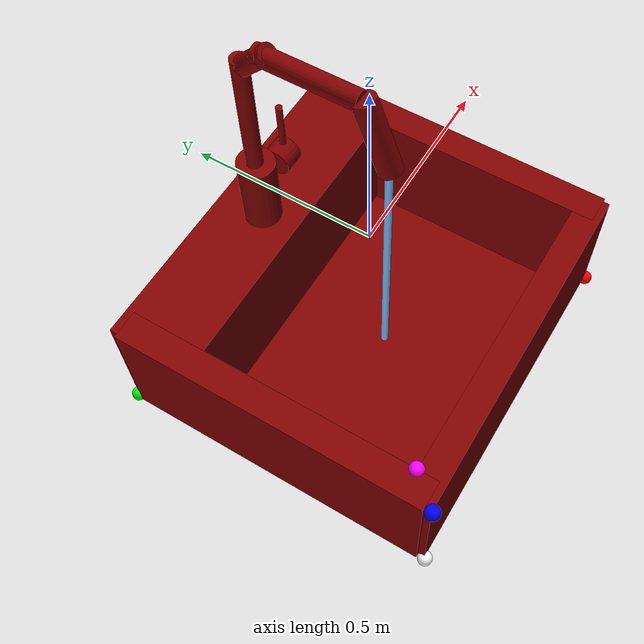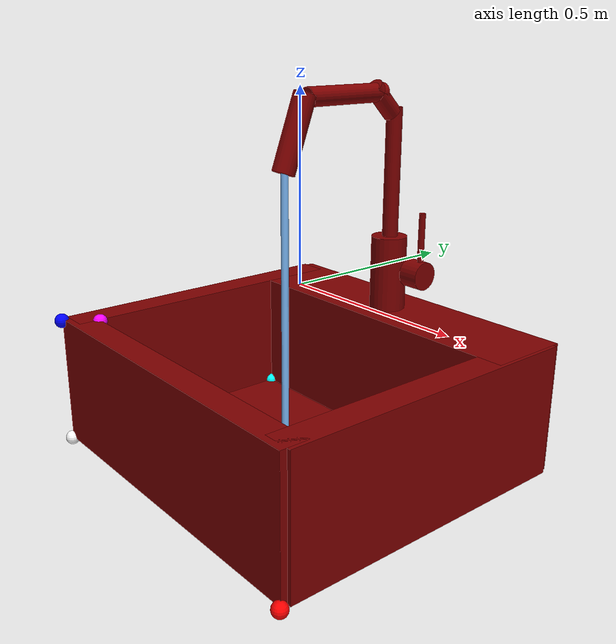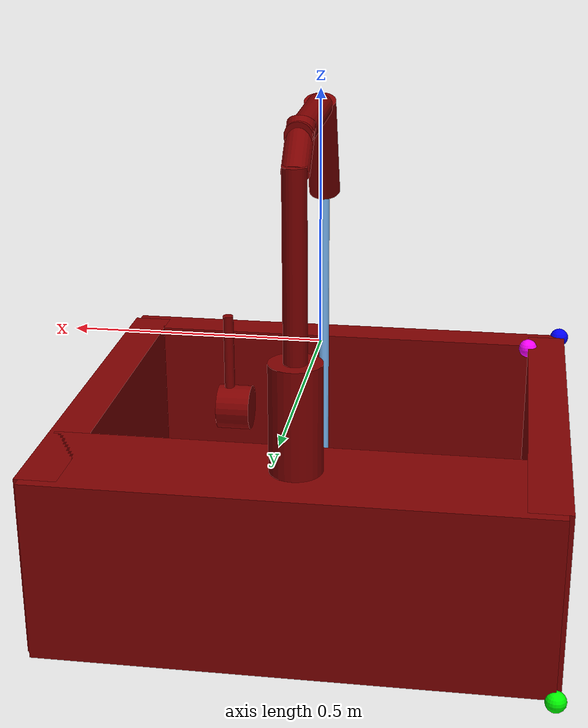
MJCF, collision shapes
<mujoco model="model">
  <compiler angle="radian" />
  <asset>
    <texture type="2d" name="image0" file="visuals/image0.png" />
    <material name="kitchen_sink" texture="image0" specular="0.5" shininess="0.25" />
    <mesh file="visuals/model_1.obj" name="model_1_vis" scale="1 1 1" />
    <mesh file="visuals/spout_0.obj" name="spout_0_vis" scale="1 1 1" />
    <mesh file="visuals/handle_0.obj" name="handle_0_vis" scale="1 1 1" />
  </asset>
  <default>
    <default class="visual">
      <geom conaffinity="0" contype="0" group="1" type="mesh" />
    </default>
    <default class="collision">
      <geom group="0" rgba="0.5 0 0 0.5" />
    </default>
  </default>
  <worldbody>
    <body>
      <body name="object">
        <geom solimp="0.998 0.998 0.001" solref="0.001 1" density="100" friction="0.95 0.3 0.1"
          type="mesh" mesh="model_1_vis" material="kitchen_sink" class="visual" />
        <!-- Bottom -->
        <geom class="collision" type="box" pos="0 -0.08 -0.4825" size="0.485 0.35 0.0125"
          name="bottom" />
        <!-- Left -->
        <geom class="collision" type="box" pos="-0.455 0 -0.31" size="0.04 0.43 0.18" />
        <!-- Right -->
        <geom class="collision" type="box" pos="0.455 0 -0.31" size="0.04 0.43 0.18" />
        <!-- Back -->
        <geom class="collision" type="box" pos="0 0.335 -0.31" size="0.485 0.115 0.18" />
        <!-- Front -->
        <geom class="collision" type="box" pos="0 -0.41 -0.31" size="0.485 0.038 0.18" />
        <!-- Base -->
        <geom class="collision" type="cylinder" pos="0 0.323 -0.026" size="0.05 0.105 0" />
        <!-- Knob Connection -->
        <body name="spout">
          <joint axis="0 0 1" limited="true" name="spout_joint" damping="10" range="-1.57 1.57"
            pos="0 0.325 0.25" />
          <geom solimp="0.998 0.998 0.001" solref="0.001 1" density="100" friction="0.95 0.3 0.1"
            type="mesh" mesh="spout_0_vis" material="kitchen_sink" class="visual" />
          <!-- Faucet Main -->
          <geom class="collision" type="cylinder" pos="0 0.325 0.25" size="0.022 0.18 0" />
          <geom class="collision" type="cylinder" axisangle="1 0 0 0.785" pos="0 0.28 0.45"
            size="0.025 0.05 0" />
          <!-- Faucet Top -->
          <geom class="collision" type="cylinder" axisangle="1 0 0 1.5708" pos="0 0.15 0.47"
            size="0.025 0.13 0" name="spout_top" />
          <!-- Faucet Front -->
          <geom class="collision" type="cylinder" axisangle="1 0 0 2.79" pos="0 -0.02 0.385"
            size="0.03 0.1 0" />
          <site type="cylinder" rgba="0.5 0.75 1 1" pos="0.0 -0.05 -0.10" size="0.01 0.40"
            name="water" />
        </body>
        <body name="handle">
          <joint axis="1 0 0" limited="true" name="handle_temp_joint" range="-0.785 0.785"
            damping="50" pos="0.079 0.325 -0.01" armature="2" />
          <joint axis="0 1 0" limited="true" name="handle_joint" range="0 0.52" damping="10"
            pos="0.079 0.325 0.01" armature="2" />
          <geom solimp="0.998 0.998 0.001" solref="0.001 1" density="100" friction="0.95 0.3 0.1"
            type="mesh" mesh="handle_0_vis" material="kitchen_sink" class="visual" />
          <!-- Knob Main -->
          <geom class="collision" type="cylinder" pos="0.108 0.325 -0.01" size="0.039 0.029 0"
            quat="0 1 0 1" />
          <!-- Knob Handle -->
          <geom class="collision" type="cylinder" pos="0.118 0.325 0.091" size="0.009 0.07 0"
            name="handle_main" />
        </body>
        <!-- exterior bounding box points -->
        <site rgba="1 1 1 1" size="0.02" pos="-0.485 -0.45 -0.492" name="ext_p0" />
        <site rgba="1 0 0 1" size="0.02" pos="0.485 -0.45 -0.492" name="ext_px" />
        <site rgba="0 1 0 1" size="0.02" pos="-0.485 0.45 -0.492" name="ext_py" />
        <site rgba="0 0 1 1" size="0.02" pos="-0.485 -0.45 -0.135" name="ext_pz" />
        <!-- interior bounding box points -->
        <site rgba="0.5 0.5 0.5 1" size="0.02" pos="-0.415 -0.37 -0.47" name="int_p0" />
        <site rgba="1 1 0 1" size="0.02" pos="0.415 -0.37 -0.47" name="int_px" />
        <site rgba="0 1 1 1" size="0.02" pos="-0.415 0.22 -0.47" name="int_py" />
        <site rgba="1 0 1 1" size="0.02" pos="-0.415 -0.37 -0.135" name="int_pz" />
      </body>
    </body>
  </worldbody>
</mujoco>
